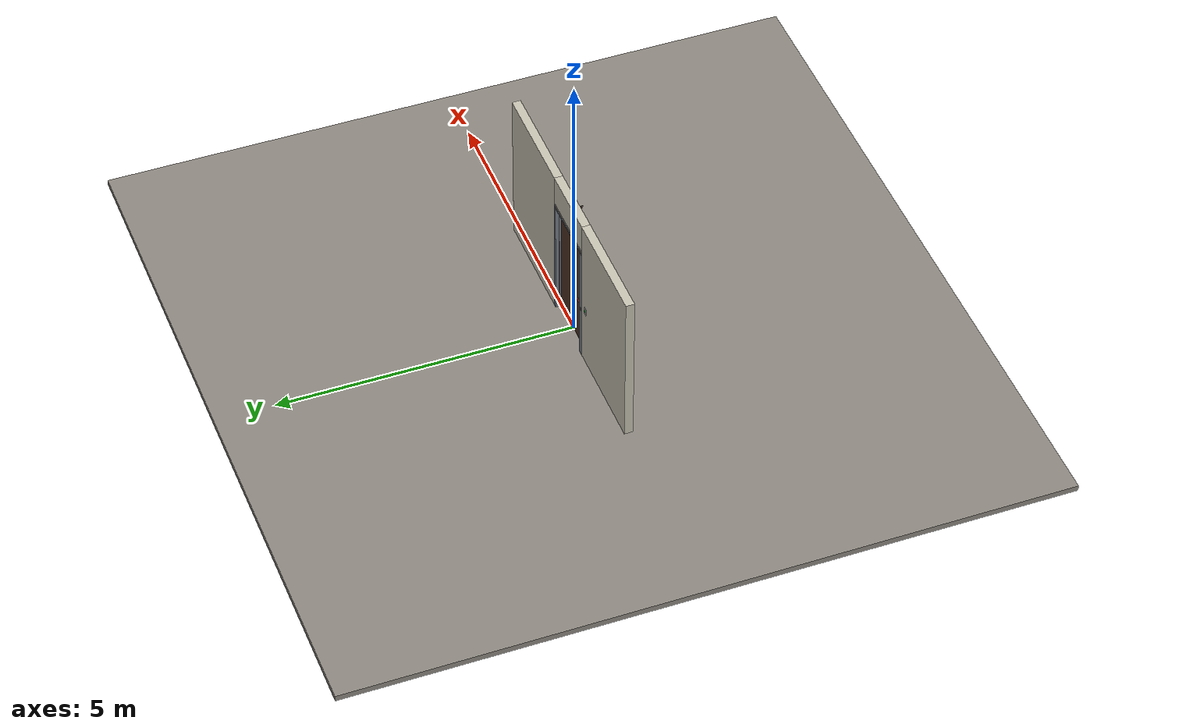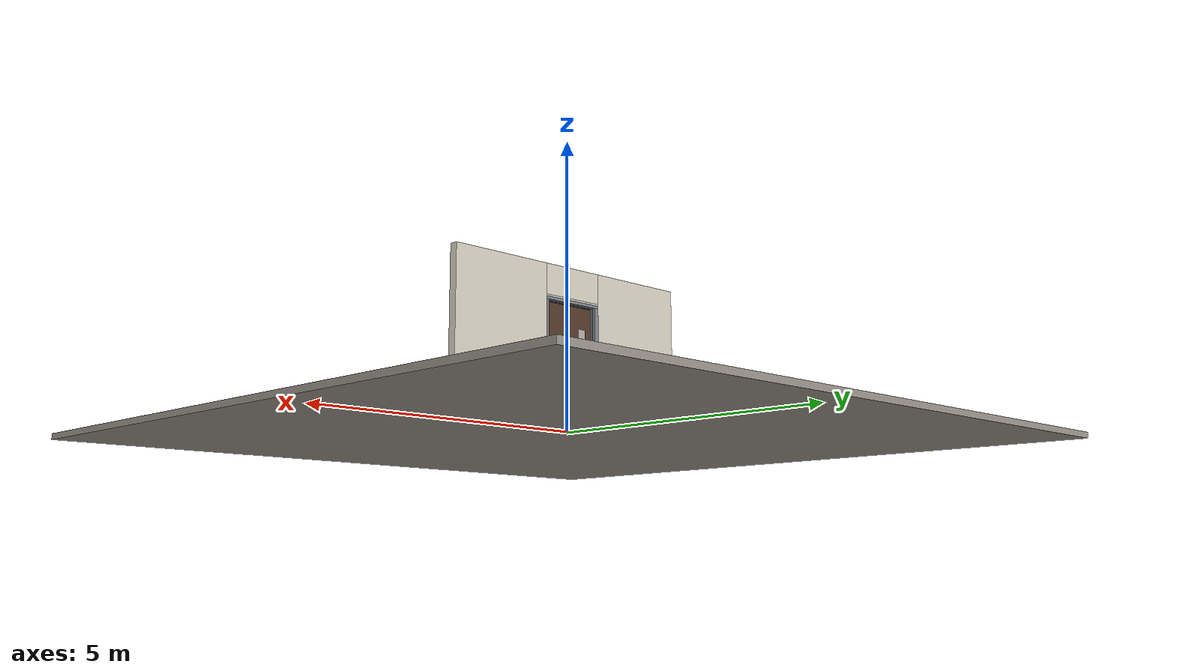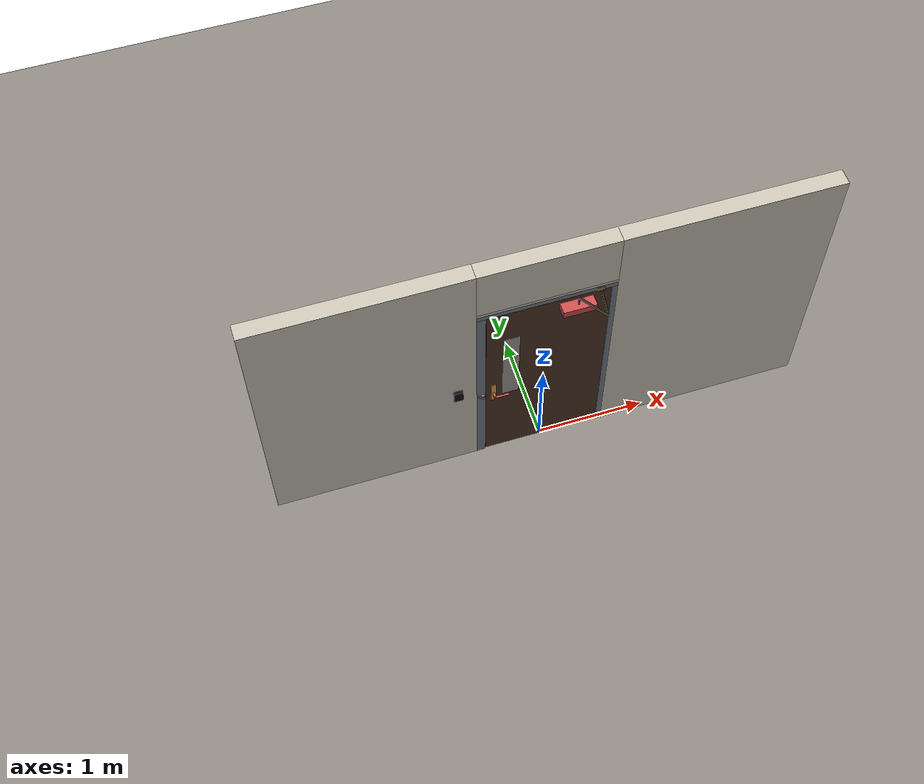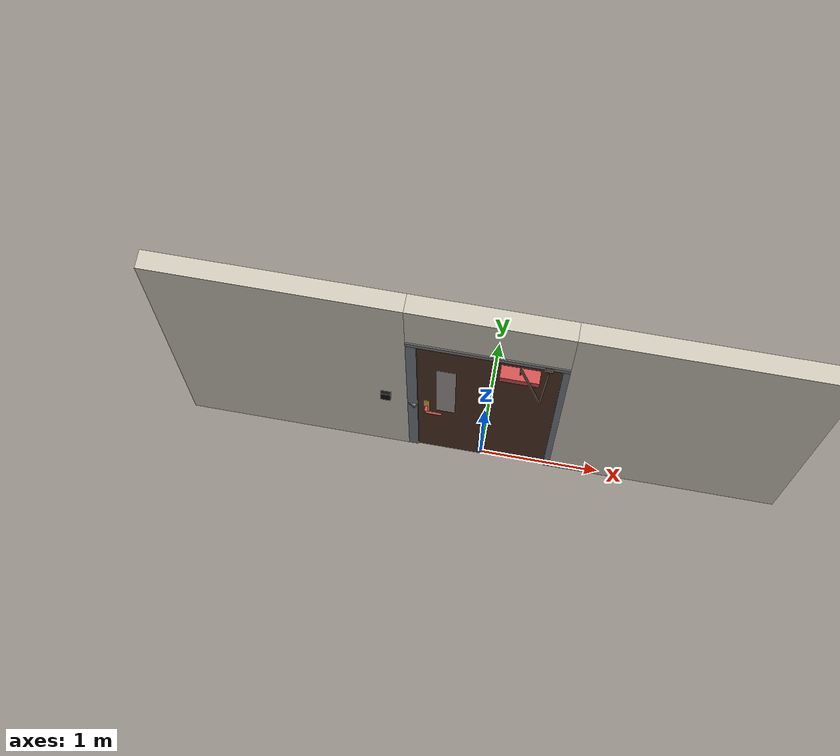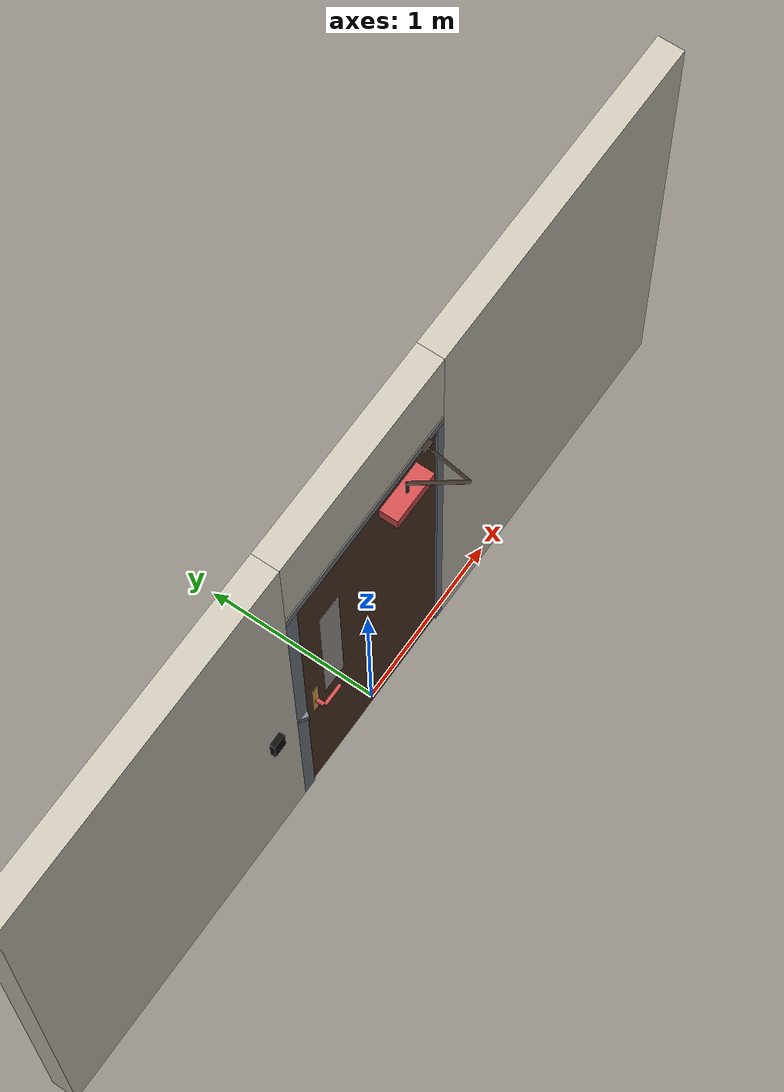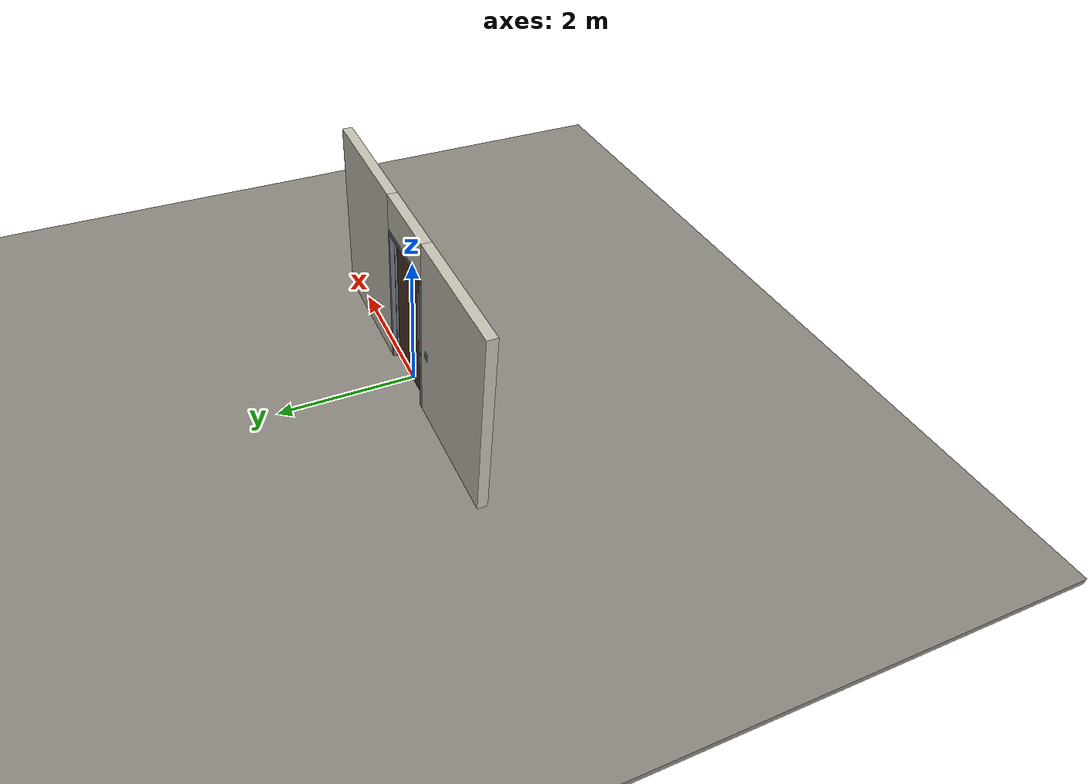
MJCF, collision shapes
<?xml version="1.0" ?>
<mujoco model="db0266_swing_single_full">
  <compiler angle="radian" meshdir="../../hardware" texturedir="../../textures" autolimits="true" inertiafromgeom="false"/>
  <option timestep="0.002" integrator="implicitfast" cone="elliptic" impratio="10" noslip_iterations="3">
    <flag multiccd="enable"/>
  </option>
  <size memory="16M"/>
  <default>
    <geom condim="4" solref="0.005 1" solimp="0.95 0.99 0.001"/>
    <joint solreflimit="0.005 1" solimplimit="0.95 0.99 0.001"/>
    <tendon solreflimit="0.005 1"/>
    <equality solref="0.002 1"/>
  </default>
  <visual>
    <headlight ambient="0.4 0.4 0.4" diffuse="0.7 0.7 0.7" specular="0.2 0.2 0.2"/>
    <quality shadowsize="4096"/>
    <map znear="0.01" zfar="60"/>
  </visual>
  <asset>
    <mesh name="closer_body_fdc4667657" file="closer_body_fdc4667657.obj"/>
    <mesh name="hinge_e22b26c0c1" file="hinge_e22b26c0c1.obj"/>
    <mesh name="hinge_jamb_e1d088f8dc" file="hinge_jamb_e1d088f8dc.obj"/>
    <mesh name="lever_6fbb1e9593" file="lever_6fbb1e9593.obj"/>
    <material name="mat_floor" rgba="0.55 0.53 0.5 1" specular="0.2" shininess="0.15" reflectance="0"/>
    <material name="mat_wall" rgba="0.78 0.76 0.7 1" specular="0.2" shininess="0.1" reflectance="0"/>
    <material name="mat_leaf" rgba="0.3 0.2 0.14 1" specular="0.23" shininess="0.38" reflectance="0.02"/>
    <material name="mat_glass" rgba="0.9 0.93 0.95 0.6" specular="0.2" shininess="0.5" reflectance="0.1"/>
    <material name="mat_hinge" rgba="0.65 0.66 0.68 1" specular="0.74" shininess="0.5" reflectance="0.36"/>
    <material name="mat_op_brass" rgba="0.85 0.66 0.3 1" specular="0.8" shininess="0.75" reflectance="0.4"/>
    <material name="mat_trim" rgba="0.85 0.66 0.3 1" specular="0.8" shininess="0.75" reflectance="0.4"/>
    <material name="mat_bolt" rgba="0.85 0.66 0.3 1" specular="0.8" shininess="0.75" reflectance="0.4"/>
    <material name="mat_frame" rgba="0.45 0.48 0.52 1" specular="0.32" shininess="0.6" reflectance="0.08"/>
    <material name="mat_seal" rgba="0.1 0.1 0.1 1" specular="0.2" shininess="0.1" reflectance="0"/>
    <material name="mat_closer" rgba="0.22 0.17 0.13 1" specular="0.8" shininess="0.6" reflectance="0.4"/>
    <material name="mat_wallreader" rgba="0.05 0.05 0.05 1" specular="0.38" shininess="0.3" reflectance="0.12"/>
    <material name="mat_rex" rgba="0.1 0.6 0.2 1" specular="0.2" shininess="0.6" reflectance="0"/>
    <texture name="skybox" type="skybox" builtin="gradient" rgb1="0.6 0.7 0.85" rgb2="0.9 0.92 0.95" width="256" height="256"/>
  </asset>
  <worldbody>
    <light name="sun" pos="1.5 -2.5 4" dir="-0.3 0.5 -0.8" directional="true" diffuse="0.8 0.8 0.8" specular="0.3 0.3 0.3" castshadow="true"/>
    <light name="fill" pos="-1.5 2.5 3" dir="0.3 -0.5 -0.7" directional="true" diffuse="0.35 0.35 0.4" castshadow="false"/>
    <camera name="robot_view" pos="0 -2.594313 1.812087" xyaxes="1 0 0 0 0.26963 0.962964" fovy="52"/>
    <camera name="far_view" pos="0 2.681312 1.812087" xyaxes="-1 0 0 0 -0.26963 0.962964" fovy="52"/>
    <camera name="iso" pos="-2.004737 -2.172262 2.234138" xyaxes="0.741536 -0.670913 0 0.242917 0.268487 0.932151" fovy="46"/>
    <camera name="detail_handle" pos="-0.179 -0.877 1.245" xyaxes="0.97561 0.219512 0 -0.070934 0.315262 0.94635" fovy="38"/>
    <geom name="floor" type="box" size="6 6 0.05" pos="0 0 -0.05" material="mat_floor" group="0" contype="1" conaffinity="1" friction="0.8 0.005 0.0001" density="2400"/>
    <geom name="wall_left" type="box" size="0.9415 0.0725 1.3735" pos="-1.5585 0.0435 1.3735" material="mat_wall" group="0" contype="1" conaffinity="1" friction="0.6 0.005 0.0001" density="800"/>
    <geom name="wall_right" type="box" size="0.9565 0.0725 1.3735" pos="1.5435 0.0435 1.3735" material="mat_wall" group="0" contype="1" conaffinity="1" friction="0.6 0.005 0.0001" density="800"/>
    <geom name="wall_header" type="box" size="0.602 0.0725 0.26" pos="-0.015 0.0435 2.487" material="mat_wall" group="0" contype="1" conaffinity="1" friction="0.6 0.005 0.0001" density="800"/>
    <geom name="hinge_0_jamb" type="mesh" mesh="hinge_jamb_e1d088f8dc" pos="0.534 -0.029 0.259" quat="0 0 1 0" material="mat_hinge" group="1" contype="0" conaffinity="0" density="7850"/>
    <geom name="hinge_1_jamb" type="mesh" mesh="hinge_jamb_e1d088f8dc" pos="0.534 -0.029 0.827" quat="0 0 1 0" material="mat_hinge" group="1" contype="0" conaffinity="0" density="7850"/>
    <geom name="hinge_2_jamb" type="mesh" mesh="hinge_jamb_e1d088f8dc" pos="0.534 -0.029 1.395" quat="0 0 1 0" material="mat_hinge" group="1" contype="0" conaffinity="0" density="7850"/>
    <geom name="hinge_3_jamb" type="mesh" mesh="hinge_jamb_e1d088f8dc" pos="0.534 -0.029 1.963" quat="0 0 1 0" material="mat_hinge" group="1" contype="0" conaffinity="0" density="7850"/>
    <geom name="jamb_hinge" type="box" size="0.025 0.0725 1.0735" pos="0.562 0.0435 1.0735" material="mat_frame" group="0" contype="1" conaffinity="1" friction="0.6 0.005 0.0001" density="300"/>
    <geom name="strike_965_wall_n" type="box" size="0.04 0.05325 0.0183" pos="-0.577 0.06275 0.965" material="mat_frame" group="0" contype="1" conaffinity="1" friction="0.6 0.005 0.0001" density="300"/>
    <geom name="strike_965_wall_p" type="box" size="0.04 0.008 0.0183" pos="-0.577 -0.0175 0.965" material="mat_frame" group="0" contype="1" conaffinity="1" friction="0.6 0.005 0.0001" density="300"/>
    <geom name="strike_965_ramp" type="box" size="0.04 0.018028 0.0183" pos="-0.580282 -0.018312 0.965" quat="0.957092 0 0 -0.289784" material="mat_frame" group="0" contype="1" conaffinity="1" friction="0.12 0.005 0.0001" density="300"/>
    <geom name="strike_965_back" type="box" size="0.0285 0.0095 0.0183" pos="-0.5885 0 0.965" material="mat_frame" group="0" contype="1" conaffinity="1" friction="0.6 0.005 0.0001" density="300"/>
    <geom name="jamb_strike_0" type="box" size="0.04 0.0725 0.47335" pos="-0.577 0.0435 0.47335" material="mat_frame" group="0" contype="1" conaffinity="1" friction="0.6 0.005 0.0001" density="300"/>
    <geom name="jamb_strike_1" type="box" size="0.04 0.0725 0.58185" pos="-0.577 0.0435 1.56515" material="mat_frame" group="0" contype="1" conaffinity="1" friction="0.6 0.005 0.0001" density="300"/>
    <geom name="jamb_head" type="box" size="0.602 0.0725 0.025" pos="-0.015 0.0435 2.172" material="mat_frame" group="0" contype="1" conaffinity="1" friction="0.6 0.005 0.0001" density="300"/>
    <geom name="head_stud" type="box" size="0.602 0.0725 0.015" pos="-0.015 0.0435 2.212" material="mat_wall" group="0" contype="1" conaffinity="1" friction="0.6 0.005 0.0001" density="500"/>
    <geom name="stop_hinge" type="box" size="0.0055 0.016 1.0735" pos="0.5315 0.0385 1.0735" material="mat_frame" group="0" contype="1" conaffinity="1" friction="0.6 0.005 0.0001" density="300"/>
    <geom name="stop_strike" type="box" size="0.0055 0.016 1.0735" pos="-0.5315 0.0385 1.0735" material="mat_frame" group="0" contype="1" conaffinity="1" friction="0.6 0.005 0.0001" density="300"/>
    <geom name="stop_head" type="box" size="0.537 0.016 0.0055" pos="0 0.0385 2.1415" material="mat_frame" group="0" contype="1" conaffinity="1" friction="0.6 0.005 0.0001" density="300"/>
    <geom name="seal_hinge" type="box" size="0.004 0.002 1.0735" pos="0.534 0.024 1.0735" material="mat_seal" group="1" contype="0" conaffinity="0" density="1100"/>
    <geom name="seal_strike" type="box" size="0.004 0.002 1.0735" pos="-0.534 0.024 1.0735" material="mat_seal" group="1" contype="0" conaffinity="0" density="1100"/>
    <geom name="seal_head" type="box" size="0.517 0.002 0.008" pos="0 0.024 2.135" material="mat_seal" group="1" contype="0" conaffinity="0" density="1100"/>
    <geom name="closer_bracket" type="box" size="0.03 0.012 0.014" pos="0.437 -0.041 2.177" material="mat_closer" group="1" contype="0" conaffinity="0" density="2700"/>
    <geom name="wall_reader" type="box" size="0.04 0.015 0.06" pos="-0.787 -0.044 1.1" material="mat_wallreader" group="0" contype="1" conaffinity="1" friction="0.6 0.005 0.0001" density="1000"/>
    <geom name="rex_plate" type="box" size="0.04 0.003 0.06" pos="-0.787 0.119 1.1" material="mat_wallreader" group="1" contype="0" conaffinity="0" density="1000"/>
    <site name="approach_point" pos="0 -1.5 0" quat="1 0 0 0" size="0.05" rgba="0.2 0.9 0.2 0.5" group="4"/>
    <site name="goal_point" pos="0 1.5 0" quat="1 0 0 0" size="0.05" rgba="0.2 0.9 0.2 0.5" group="4"/>
    <site name="door_plane_center" pos="0 0 1.0735" quat="1 0 0 0" size="0.02" rgba="0.2 0.9 0.2 0.5" group="4"/>
    <body name="rex_button" pos="-0.787 0.122 1.1">
      <inertial pos="0 0.004 0" mass="0.010053" quat="0 0 0.707107 -0.707107" diaginertia="0.000001059 0.000001059 0.000002011"/>
      <joint name="rex_button_slide" type="slide" axis="0 -1 0" limited="true" range="0 0.004" damping="1" stiffness="1500" springref="-0.004" armature="0.1"/>
      <geom name="rex_button_geom" type="cylinder" size="0.02 0.004" pos="0 0.004 0" quat="0.707107 -0.707107 0 0" material="mat_rex" group="0" contype="1" conaffinity="1" friction="0.6 0.005 0.0001" density="1000"/>
    </body>
    <body name="leaf" pos="0.537 0 0">
      <inertial pos="-0.47918 -0.015851 1.288101" mass="63.051443" quat="0.461993 0.485415 0.525737 -0.523961" diaginertia="5.339677134 29.25689104 34.491746461"/>
      <joint name="leaf_hinge" type="hinge" axis="0 0 1" pos="-0.003 -0.029 0" limited="true" range="0 1.745329" solreflimit="0.02 1" damping="12.49954" frictionloss="1.64211" stiffness="12.363156" springref="-2.691869" armature="0.02"/>
      <geom name="leaf_slab" type="box" size="0.5335 0.022 1.067" pos="-0.5365 0 1.076" material="mat_leaf" group="0" contype="1" conaffinity="1" friction="0.4 0.005 0.0001" density="1"/>
      <geom name="leaf_glass_0" type="box" size="0.075 0.0228 0.4268" pos="-0.84763 0 1.33208" material="mat_glass" group="1" contype="0" conaffinity="0" density="1"/>
      <geom name="hinge_0" type="mesh" mesh="hinge_e22b26c0c1" pos="-0.003 -0.029 0.259" quat="0 0 1 0" material="mat_hinge" group="1" contype="0" conaffinity="0" density="7850"/>
      <geom name="hinge_1" type="mesh" mesh="hinge_e22b26c0c1" pos="-0.003 -0.029 0.827" quat="0 0 1 0" material="mat_hinge" group="1" contype="0" conaffinity="0" density="7850"/>
      <geom name="hinge_2" type="mesh" mesh="hinge_e22b26c0c1" pos="-0.003 -0.029 1.395" quat="0 0 1 0" material="mat_hinge" group="1" contype="0" conaffinity="0" density="7850"/>
      <geom name="hinge_3" type="mesh" mesh="hinge_e22b26c0c1" pos="-0.003 -0.029 1.963" quat="0 0 1 0" material="mat_hinge" group="1" contype="0" conaffinity="0" density="7850"/>
      <geom name="leaf_handle_escutcheon_n" type="box" size="0.0225 0.0015 0.12" pos="-1 -0.0235 0.965" material="mat_op_brass" group="1" contype="0" conaffinity="0" density="3000"/>
      <geom name="leaf_handle_escutcheon_p" type="box" size="0.0225 0.0015 0.12" pos="-1 0.0235 0.965" material="mat_op_brass" group="1" contype="0" conaffinity="0" density="3000"/>
      <geom name="leaf_latch_bolt_faceplate" type="box" size="0.0006 0.014 0.0283" pos="-1.0694 0 0.965" material="mat_bolt" group="1" contype="0" conaffinity="0" density="8500"/>
      <geom name="closer_body" type="mesh" mesh="closer_body_fdc4667657" pos="-0.3 -0.022 2.054" quat="0 0 -0.707107 0.707107" material="mat_closer" group="1" contype="0" conaffinity="0" density="2000"/>
      <geom name="closer_body_col" type="box" size="0.145 0.05 0.035" pos="-0.3 -0.072 2.054" material="mat_closer" group="3" contype="1" conaffinity="1" rgba="0.8 0.3 0.3 0.25" friction="0.6 0.005 0.0001" density="2000"/>
      <geom name="closer_pinion_shaft" type="cylinder" size="0.008 0.0615" pos="-0.3 -0.072 2.1155" material="mat_closer" group="1" contype="0" conaffinity="0" density="2700"/>
      <site name="leaf_edge_mid" pos="-1.07 0 1.067" quat="1 0 0 0" size="0.02" rgba="0.2 0.9 0.2 0.5" group="4"/>
      <body name="leaf_handle" pos="-1 0 0.965">
        <inertial pos="0.040022 0 0" mass="0.836698" quat="0.707107 0 0 -0.707107" diaginertia="0.001688823 0.003812607 0.00545529"/>
        <joint name="leaf_handle_hinge" type="hinge" axis="0 1 0" limited="true" range="0 0.7" damping="0.270116" frictionloss="0.064" stiffness="1.4" springref="-0.428571" armature="0.01"/>
        <geom name="leaf_handle_spindle" type="cylinder" size="0.006 0.034" pos="0 0 0" quat="0.707107 -0.707107 0 0" material="mat_op_brass" group="1" contype="0" conaffinity="0" density="7850"/>
        <geom name="leaf_handle_lever_n" type="mesh" mesh="lever_6fbb1e9593" pos="0 -0.022 0" quat="0 0 -0.707107 0.707107" material="mat_op_brass" group="1" contype="0" conaffinity="0" density="3000"/>
        <geom name="leaf_handle_lever_col_n" type="capsule" size="0.01 0.055" pos="0.065 -0.077 0" quat="0.707107 0 0.707107 0" material="mat_op_brass" group="3" contype="1" conaffinity="1" rgba="0.8 0.3 0.3 0.25" friction="0.7 0.01 0.0001" density="3000"/>
        <geom name="leaf_handle_hub_col_n" type="cylinder" size="0.012 0.022" pos="0 -0.052 0" quat="0.707107 -0.707107 0 0" material="mat_op_brass" group="3" contype="1" conaffinity="1" rgba="0.8 0.3 0.3 0.25" friction="0.6 0.005 0.0001" density="3000"/>
        <geom name="leaf_handle_lever_p" type="mesh" mesh="lever_6fbb1e9593" pos="0 0.022 0" quat="0 0 0.707107 0.707107" material="mat_op_brass" group="1" contype="0" conaffinity="0" density="3000"/>
        <geom name="leaf_handle_lever_col_p" type="capsule" size="0.01 0.055" pos="0.065 0.077 0" quat="0.707107 0 0.707107 0" material="mat_op_brass" group="3" contype="1" conaffinity="1" rgba="0.8 0.3 0.3 0.25" friction="0.7 0.01 0.0001" density="3000"/>
        <geom name="leaf_handle_hub_col_p" type="cylinder" size="0.012 0.022" pos="0 0.052 0" quat="0.707107 -0.707107 0 0" material="mat_op_brass" group="3" contype="1" conaffinity="1" rgba="0.8 0.3 0.3 0.25" friction="0.6 0.005 0.0001" density="3000"/>
        <site name="leaf_handle_grip_n" pos="0.104 -0.077 0" quat="1 0 0 0" size="0.012" rgba="0.2 0.9 0.2 0.5" group="4"/>
        <site name="leaf_handle_grip_p" pos="0.104 0.077 0" quat="1 0 0 0" size="0.012" rgba="0.2 0.9 0.2 0.5" group="4"/>
      </body>
      <body name="leaf_latch_bolt" pos="-1.07 0 0.965">
        <inertial pos="0.0055 0 0" mass="0.074627" quat="0.92388 0.382683 0 0" diaginertia="0.000002271 0.000013255 0.000013255"/>
        <joint name="leaf_latch_bolt_slide" type="slide" axis="1 0 0" limited="true" range="0 0.019" damping="2" frictionloss="0.3" stiffness="600" springref="-0.01" armature="0.1"/>
        <geom name="leaf_latch_bolt_capsule" type="capsule" size="0.008 0.0165" pos="0.0055 0 0" quat="0.707107 0 -0.707107 0" material="mat_bolt" group="0" contype="1" conaffinity="1" friction="0.2 0.005 0.0001" density="8500"/>
      </body>
      <body name="closer_arm_main" pos="-0.3 -0.072 2.177" quat="0.890947 0 0 -0.454107">
        <inertial pos="0.14 0 0" mass="0.12096" quat="1 0 0 0" diaginertia="0.000003588 0.00079128 0.000792852"/>
        <joint name="closer_pinion" type="hinge" axis="0 0 1" limited="false" damping="0.01" armature="0.002"/>
        <geom name="closer_arm_main_geom" type="box" size="0.14 0.008 0.005" pos="0.14 0 0" material="mat_closer" group="1" contype="0" conaffinity="0" density="2700"/>
        <body name="closer_arm_fore" pos="0.28 0 0" quat="0.373215 0 0 0.927745">
          <inertial pos="0.128088 0 0" mass="0.076531" quat="1 0 0 0" diaginertia="0.000001771 0.000437665 0.000438201"/>
          <joint name="closer_elbow" type="hinge" axis="0 0 1" limited="false" damping="0.01" armature="0.002"/>
          <geom name="closer_arm_fore_geom" type="box" size="0.1125 0.007 0.004" pos="0.1125 0 0" material="mat_closer" group="1" contype="0" conaffinity="0" density="2700"/>
          <geom name="closer_fore_neck" type="box" size="0.0175 0.003 0.003" pos="0.2425 0 0" material="mat_closer" group="1" contype="0" conaffinity="0" density="2700"/>
          <geom name="closer_fore_pivot" type="cylinder" size="0.005 0.012" pos="0.26 0 0" material="mat_closer" group="1" contype="0" conaffinity="0" density="2700"/>
        </body>
      </body>
    </body>
  </worldbody>
  <tendon>
    <fixed name="leaf_latch_bolt_coupling" limited="true" range="0 10">
      <joint joint="leaf_latch_bolt_slide" coef="1"/>
      <joint joint="leaf_handle_hinge" coef="-0.028788"/>
    </fixed>
  </tendon>
  <equality>
    <connect name="closer_arm_connect" body1="closer_arm_fore" body2="world" anchor="0.26 0 0" active="true"/>
  </equality>
  <contact>
    <exclude body1="closer_arm_main" body2="leaf"/>
    <exclude body1="closer_arm_fore" body2="leaf"/>
    <exclude body1="closer_arm_main" body2="closer_arm_fore"/>
  </contact>
  <sensor>
    <jointpos name="leaf_hinge_pos" joint="leaf_hinge"/>
    <jointvel name="leaf_hinge_vel" joint="leaf_hinge"/>
    <jointpos name="leaf_handle_hinge_pos" joint="leaf_handle_hinge"/>
    <jointvel name="leaf_handle_hinge_vel" joint="leaf_handle_hinge"/>
    <jointpos name="leaf_latch_bolt_slide_pos" joint="leaf_latch_bolt_slide"/>
    <jointvel name="leaf_latch_bolt_slide_vel" joint="leaf_latch_bolt_slide"/>
    <jointpos name="rex_button_slide_pos" joint="rex_button_slide"/>
    <jointvel name="rex_button_slide_vel" joint="rex_button_slide"/>
  </sensor>
</mujoco>
